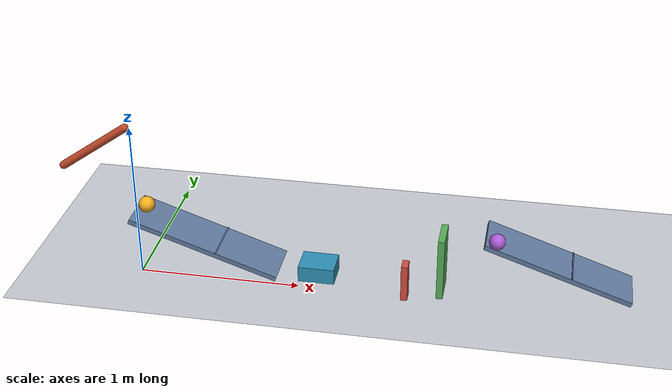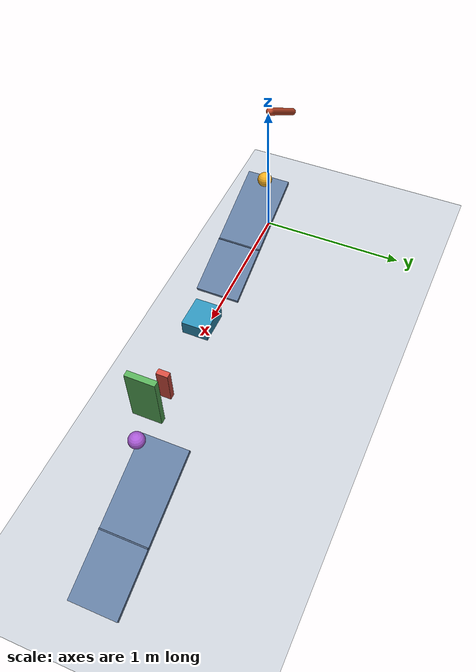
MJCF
<mujoco model="pendulum_ball_cart_domino_flap">
  <compiler angle="degree" autolimits="true"/>
  <option timestep="0.002" gravity="0 0 -9.81" integrator="implicitfast" cone="elliptic" iterations="100"/>
  <size nconmax="200" njmax="1000"/>

  <visual>
    <headlight ambient="0.4 0.4 0.4" diffuse="0.7 0.7 0.7" specular="0.2 0.2 0.2"/>
  </visual>

  <worldbody>
    <light name="overhead_light" pos="1.4 -2 4" dir="0 0 -1"/>
    <camera name="overview" pos="1.5 -4.8 2.5" xyaxes="1 0 0 0 0.40 0.9165"/>

    <geom name="floor" type="plane" size="6 4 0.1" friction="0.68 0.005 0.004" condim="6" solref="0.004 0.690107" solimp="0.95 0.95 0.001" rgba="0.78 0.80 0.83 1"/>

    <!-- The capsule's overall end-to-end length is 0.55 m. -->
    <body name="pendulum1" pos="-0.006 0 1.013659429" quat="0.887010833 0 0.461748613 0">
      <joint name="pendulum1_hinge" type="hinge" axis="0 -1 0" damping="0.04" limited="true" range="-5 155"/>
      <geom name="pendulum1_rod" type="capsule" fromto="0 0 -0.025 0 0 -0.525" size="0.025" mass="0.40" friction="0.68 0.005 0.004" condim="6" solref="0.004 0.690107" solimp="0.95 0.95 0.001" rgba="0.75 0.28 0.16 1"/>
    </body>

    <!-- Ramp1's upper surface ends at z=0.15; its surface length is 0.95 m. -->
    <body name="ramp1" pos="0.444237801 0 0.290462095" quat="0.986285602 0 0.165047606 0">
      <geom name="ramp1_surface" type="box" size="0.475 0.15 0.015" friction="0.68 0.005 0.004" condim="6" solref="0.004 0.690107" solimp="0.95 0.95 0.001" rgba="0.38 0.48 0.62 1"/>
      <geom name="ramp1_release_lip" type="box" pos="0.08275 0 0.018" size="0.004 0.15 0.003" friction="0.68 0.005 0.004" condim="6" solref="0.004 0.690107" solimp="0.95 0.95 0.001" rgba="0.29 0.37 0.48 1"/>
    </body>

    <body name="ball1" pos="0.068281930 0 0.488659429">
      <freejoint name="ball1_free"/>
      <geom name="ball1_sphere" type="sphere" size="0.05" mass="0.20" friction="0.68 0.005 0.004" condim="6" solref="0.004 0.690107" solimp="0.95 0.95 0.001" rgba="0.95 0.68 0.12 1"/>
    </body>

    <!-- The initial cart face is 0.12 m beyond ramp1's low edge. -->
    <body name="cart1" pos="1.128242647 0 0.15">
      <joint name="cart1_slide" type="slide" axis="1 0 0" damping="0.20" limited="true" range="0 0.40" solreflimit="0.03 1" solimplimit="0.95 0.95 0.001"/>
      <geom name="cart1_chassis" type="box" size="0.11 0.09 0.05" mass="0.50" friction="0.68 0.005 0.004" condim="6" solref="0.004 0.690107" solimp="0.95 0.95 0.001" rgba="0.18 0.57 0.72 1"/>
    </body>

    <!-- The cart reaches the domino after 0.40 m of slide travel. -->
    <body name="domino1" pos="1.658242647 0 0.12">
      <freejoint name="domino1_free"/>
      <geom name="domino1_block" type="box" size="0.02 0.04 0.12" mass="0.25" friction="0.68 0.005 0.004" condim="6" solref="0.004 0.690107" solimp="0.95 0.95 0.001" rgba="0.83 0.30 0.25 1"/>
    </body>

    <!-- Flap's near face is 0.18 m beyond the domino's forward bottom edge. -->
    <body name="flap1" pos="1.878242647 0 0.08">
      <joint name="flap1_hinge" type="hinge" axis="0 1 0" damping="0.04" limited="true" range="0 65" solreflimit="0.004 1" solimplimit="0.99 0.99 0.001"/>
      <geom name="flap1_panel" type="box" pos="0 0 0.20" size="0.02 0.10 0.20" mass="0.30" friction="0.68 0.005 0.004" condim="6" solref="0.004 0.690107" solimp="0.95 0.95 0.001" rgba="0.34 0.68 0.35 1"/>
    </body>

    <!-- Lateral offset lets the panel strike ball2 without hitting ramp2. -->
    <body name="ramp2" pos="2.566634440 0.27 0.175364663" quat="0.986285602 0 0.165047606 0">
      <geom name="ramp2_surface" type="box" size="0.475 0.15 0.015" friction="0.68 0.005 0.004" condim="6" solref="0.004 0.690107" solimp="0.95 0.95 0.001" rgba="0.38 0.48 0.62 1"/>
      <geom name="ramp2_release_lip" type="box" pos="0.08275 0 0.018" size="0.004 0.15 0.003" friction="0.68 0.005 0.004" condim="6" solref="0.004 0.690107" solimp="0.95 0.95 0.001" rgba="0.29 0.37 0.48 1"/>
    </body>

    <body name="ball2" pos="2.190678580 0.13 0.373562025">
      <freejoint name="ball2_free"/>
      <geom name="ball2_sphere" type="sphere" size="0.05" mass="0.20" friction="0.68 0.005 0.004" condim="6" solref="0.004 0.690107" solimp="0.95 0.95 0.001" rgba="0.66 0.35 0.83 1"/>
    </body>
  </worldbody>

  <!-- Omitted keyframe state values use the model's initial poses and zero velocities. -->
  <keyframe>
    <key name="start"/>
  </keyframe>
</mujoco>
